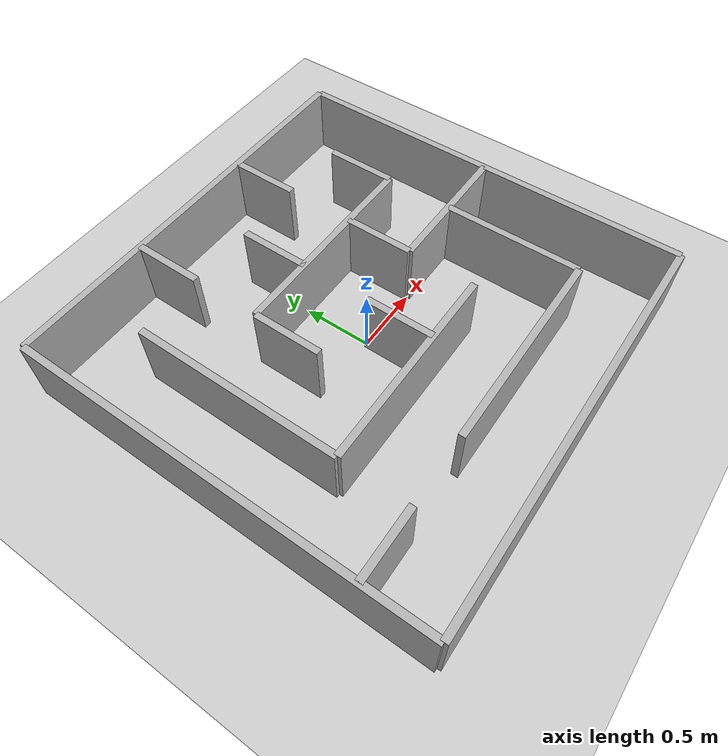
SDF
<?xml version="1.0"?>
<sdf version="1.6">
  <world name="maze_world">
    <physics name="1ms" type="ignored">
      <max_step_size>0.001</max_step_size>
      <real_time_factor>1.0</real_time_factor>
    </physics>

    <!-- Gazebo Harmonic system plugins (required for physics, spawning, LiDAR and IMU) -->
    <plugin filename="gz-sim-physics-system" name="gz::sim::systems::Physics"/>
    <plugin filename="gz-sim-user-commands-system" name="gz::sim::systems::UserCommands"/>
    <plugin filename="gz-sim-scene-broadcaster-system" name="gz::sim::systems::SceneBroadcaster"/>
    <plugin filename="gz-sim-sensors-system" name="gz::sim::systems::Sensors">
      <render_engine>ogre2</render_engine>
    </plugin>
    <plugin filename="gz-sim-imu-system" name="gz::sim::systems::Imu"/>

    <!-- Sun / Directional Light -->
    <light type="directional" name="sun">
      <cast_shadows>true</cast_shadows>
      <pose>0 0 10 0 0 0</pose>
      <diffuse>0.8 0.8 0.8 1</diffuse>
      <specular>0.2 0.2 0.2 1</specular>
      <attenuation>
        <range>1000</range>
        <constant>0.9</constant>
        <linear>0.01</linear>
        <quadratic>0.001</quadratic>
      </attenuation>
      <direction>-0.5 0.1 -0.9</direction>
    </light>

    <!-- Ground Plane -->
    <model name="ground_plane">
      <static>true</static>
      <link name="link">
        <collision name="collision">
          <geometry>
            <plane>
              <normal>0 0 1</normal>
              <size>100 100</size>
            </plane>
          </geometry>
        </collision>
        <visual name="visual">
          <geometry>
            <plane>
              <normal>0 0 1</normal>
              <size>100 100</size>
            </plane>
          </geometry>
          <material>
            <ambient>0.8 0.8 0.8 1</ambient>
            <diffuse>0.8 0.8 0.8 1</diffuse>
            <specular>0.8 0.8 0.8 1</specular>
          </material>
        </visual>
      </link>
    </model>

    <!-- Maze Model -->
    <model name="maze">
      <static>true</static>
    <link name="h_wall_1">
      <pose>0.0 1.5 0.25 0 0 0</pose>
      <collision name="collision">
        <geometry>
          <box><size>3.0 0.05 0.5</size></box>
        </geometry>
      </collision>
      <visual name="visual">
        <geometry>
          <box><size>3.0 0.05 0.5</size></box>
        </geometry>
        <material>
          <ambient>0.7 0.7 0.7 1</ambient>
          <diffuse>0.7 0.7 0.7 1</diffuse>
          <specular>0.2 0.2 0.2 1</specular>
        </material>
      </visual>
    </link>
    <link name="h_wall_2">
      <pose>0.25 0.5 0.25 0 0 0</pose>
      <collision name="collision">
        <geometry>
          <box><size>1.5 0.05 0.5</size></box>
        </geometry>
      </collision>
      <visual name="visual">
        <geometry>
          <box><size>1.5 0.05 0.5</size></box>
        </geometry>
        <material>
          <ambient>0.7 0.7 0.7 1</ambient>
          <diffuse>0.7 0.7 0.7 1</diffuse>
          <specular>0.2 0.2 0.2 1</specular>
        </material>
      </visual>
    </link>
    <link name="h_wall_3">
      <pose>1.0 0.0 0.25 0 0 0</pose>
      <collision name="collision">
        <geometry>
          <box><size>1.0 0.05 0.5</size></box>
        </geometry>
      </collision>
      <visual name="visual">
        <geometry>
          <box><size>1.0 0.05 0.5</size></box>
        </geometry>
        <material>
          <ambient>0.7 0.7 0.7 1</ambient>
          <diffuse>0.7 0.7 0.7 1</diffuse>
          <specular>0.2 0.2 0.2 1</specular>
        </material>
      </visual>
    </link>
    <link name="h_wall_4">
      <pose>-0.25 -0.5 0.25 0 0 0</pose>
      <collision name="collision">
        <geometry>
          <box><size>1.5 0.05 0.5</size></box>
        </geometry>
      </collision>
      <visual name="visual">
        <geometry>
          <box><size>1.5 0.05 0.5</size></box>
        </geometry>
        <material>
          <ambient>0.7 0.7 0.7 1</ambient>
          <diffuse>0.7 0.7 0.7 1</diffuse>
          <specular>0.2 0.2 0.2 1</specular>
        </material>
      </visual>
    </link>
    <link name="h_wall_5">
      <pose>-1.25 -1.0 0.25 0 0 0</pose>
      <collision name="collision">
        <geometry>
          <box><size>0.5 0.05 0.5</size></box>
        </geometry>
      </collision>
      <visual name="visual">
        <geometry>
          <box><size>0.5 0.05 0.5</size></box>
        </geometry>
        <material>
          <ambient>0.7 0.7 0.7 1</ambient>
          <diffuse>0.7 0.7 0.7 1</diffuse>
          <specular>0.2 0.2 0.2 1</specular>
        </material>
      </visual>
    </link>
    <link name="h_wall_6">
      <pose>0.25 -1.0 0.25 0 0 0</pose>
      <collision name="collision">
        <geometry>
          <box><size>1.5 0.05 0.5</size></box>
        </geometry>
      </collision>
      <visual name="visual">
        <geometry>
          <box><size>1.5 0.05 0.5</size></box>
        </geometry>
        <material>
          <ambient>0.7 0.7 0.7 1</ambient>
          <diffuse>0.7 0.7 0.7 1</diffuse>
          <specular>0.2 0.2 0.2 1</specular>
        </material>
      </visual>
    </link>
    <link name="h_wall_7">
      <pose>0.0 -1.5 0.25 0 0 0</pose>
      <collision name="collision">
        <geometry>
          <box><size>3.0 0.05 0.5</size></box>
        </geometry>
      </collision>
      <visual name="visual">
        <geometry>
          <box><size>3.0 0.05 0.5</size></box>
        </geometry>
        <material>
          <ambient>0.7 0.7 0.7 1</ambient>
          <diffuse>0.7 0.7 0.7 1</diffuse>
          <specular>0.2 0.2 0.2 1</specular>
        </material>
      </visual>
    </link>
    <link name="v_wall_1">
      <pose>-1.5 0.0 0.25 0 0 0</pose>
      <collision name="collision">
        <geometry>
          <box><size>0.05 3.0 0.5</size></box>
        </geometry>
      </collision>
      <visual name="visual">
        <geometry>
          <box><size>0.05 3.0 0.5</size></box>
        </geometry>
        <material>
          <ambient>0.7 0.7 0.7 1</ambient>
          <diffuse>0.7 0.7 0.7 1</diffuse>
          <specular>0.2 0.2 0.2 1</specular>
        </material>
      </visual>
    </link>
    <link name="v_wall_2">
      <pose>-1.0 0.25 0.25 0 0 0</pose>
      <collision name="collision">
        <geometry>
          <box><size>0.05 1.5 0.5</size></box>
        </geometry>
      </collision>
      <visual name="visual">
        <geometry>
          <box><size>0.05 1.5 0.5</size></box>
        </geometry>
        <material>
          <ambient>0.7 0.7 0.7 1</ambient>
          <diffuse>0.7 0.7 0.7 1</diffuse>
          <specular>0.2 0.2 0.2 1</specular>
        </material>
      </visual>
    </link>
    <link name="v_wall_3">
      <pose>-0.5 1.25 0.25 0 0 0</pose>
      <collision name="collision">
        <geometry>
          <box><size>0.05 0.5 0.5</size></box>
        </geometry>
      </collision>
      <visual name="visual">
        <geometry>
          <box><size>0.05 0.5 0.5</size></box>
        </geometry>
        <material>
          <ambient>0.7 0.7 0.7 1</ambient>
          <diffuse>0.7 0.7 0.7 1</diffuse>
          <specular>0.2 0.2 0.2 1</specular>
        </material>
      </visual>
    </link>
    <link name="v_wall_4">
      <pose>-0.5 0.25 0.25 0 0 0</pose>
      <collision name="collision">
        <geometry>
          <box><size>0.05 0.5 0.5</size></box>
        </geometry>
      </collision>
      <visual name="visual">
        <geometry>
          <box><size>0.05 0.5 0.5</size></box>
        </geometry>
        <material>
          <ambient>0.7 0.7 0.7 1</ambient>
          <diffuse>0.7 0.7 0.7 1</diffuse>
          <specular>0.2 0.2 0.2 1</specular>
        </material>
      </visual>
    </link>
    <link name="v_wall_5">
      <pose>0.0 0.75 0.25 0 0 0</pose>
      <collision name="collision">
        <geometry>
          <box><size>0.05 0.5 0.5</size></box>
        </geometry>
      </collision>
      <visual name="visual">
        <geometry>
          <box><size>0.05 0.5 0.5</size></box>
        </geometry>
        <material>
          <ambient>0.7 0.7 0.7 1</ambient>
          <diffuse>0.7 0.7 0.7 1</diffuse>
          <specular>0.2 0.2 0.2 1</specular>
        </material>
      </visual>
    </link>
    <link name="v_wall_6">
      <pose>0.0 -0.25 0.25 0 0 0</pose>
      <collision name="collision">
        <geometry>
          <box><size>0.05 0.5 0.5</size></box>
        </geometry>
      </collision>
      <visual name="visual">
        <geometry>
          <box><size>0.05 0.5 0.5</size></box>
        </geometry>
        <material>
          <ambient>0.7 0.7 0.7 1</ambient>
          <diffuse>0.7 0.7 0.7 1</diffuse>
          <specular>0.2 0.2 0.2 1</specular>
        </material>
      </visual>
    </link>
    <link name="v_wall_7">
      <pose>0.5 1.25 0.25 0 0 0</pose>
      <collision name="collision">
        <geometry>
          <box><size>0.05 0.5 0.5</size></box>
        </geometry>
      </collision>
      <visual name="visual">
        <geometry>
          <box><size>0.05 0.5 0.5</size></box>
        </geometry>
        <material>
          <ambient>0.7 0.7 0.7 1</ambient>
          <diffuse>0.7 0.7 0.7 1</diffuse>
          <specular>0.2 0.2 0.2 1</specular>
        </material>
      </visual>
    </link>
    <link name="v_wall_8">
      <pose>0.5 0.25 0.25 0 0 0</pose>
      <collision name="collision">
        <geometry>
          <box><size>0.05 0.5 0.5</size></box>
        </geometry>
      </collision>
      <visual name="visual">
        <geometry>
          <box><size>0.05 0.5 0.5</size></box>
        </geometry>
        <material>
          <ambient>0.7 0.7 0.7 1</ambient>
          <diffuse>0.7 0.7 0.7 1</diffuse>
          <specular>0.2 0.2 0.2 1</specular>
        </material>
      </visual>
    </link>
    <link name="v_wall_9">
      <pose>1.0 0.75 0.25 0 0 0</pose>
      <collision name="collision">
        <geometry>
          <box><size>0.05 0.5 0.5</size></box>
        </geometry>
      </collision>
      <visual name="visual">
        <geometry>
          <box><size>0.05 0.5 0.5</size></box>
        </geometry>
        <material>
          <ambient>0.7 0.7 0.7 1</ambient>
          <diffuse>0.7 0.7 0.7 1</diffuse>
          <specular>0.2 0.2 0.2 1</specular>
        </material>
      </visual>
    </link>
    <link name="v_wall_10">
      <pose>1.0 -0.5 0.25 0 0 0</pose>
      <collision name="collision">
        <geometry>
          <box><size>0.05 1.0 0.5</size></box>
        </geometry>
      </collision>
      <visual name="visual">
        <geometry>
          <box><size>0.05 1.0 0.5</size></box>
        </geometry>
        <material>
          <ambient>0.7 0.7 0.7 1</ambient>
          <diffuse>0.7 0.7 0.7 1</diffuse>
          <specular>0.2 0.2 0.2 1</specular>
        </material>
      </visual>
    </link>
    <link name="v_wall_11">
      <pose>1.5 0.0 0.25 0 0 0</pose>
      <collision name="collision">
        <geometry>
          <box><size>0.05 3.0 0.5</size></box>
        </geometry>
      </collision>
      <visual name="visual">
        <geometry>
          <box><size>0.05 3.0 0.5</size></box>
        </geometry>
        <material>
          <ambient>0.7 0.7 0.7 1</ambient>
          <diffuse>0.7 0.7 0.7 1</diffuse>
          <specular>0.2 0.2 0.2 1</specular>
        </material>
      </visual>
    </link>
    </model>

    <scene>
      <ambient>0.6 0.6 0.6 1</ambient>
      <background>0.8 0.8 0.9 1</background>
      <shadows>true</shadows>
    </scene>
  </world>
</sdf>
